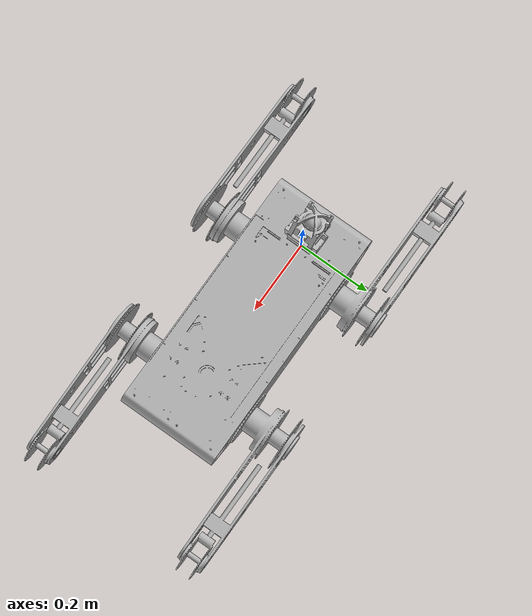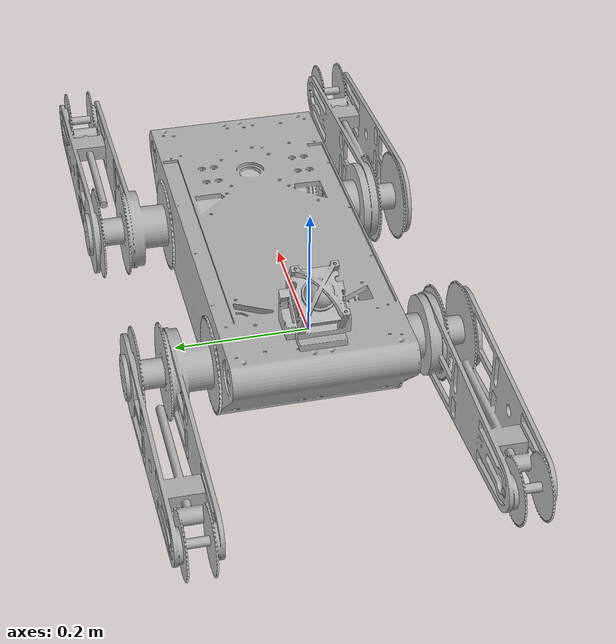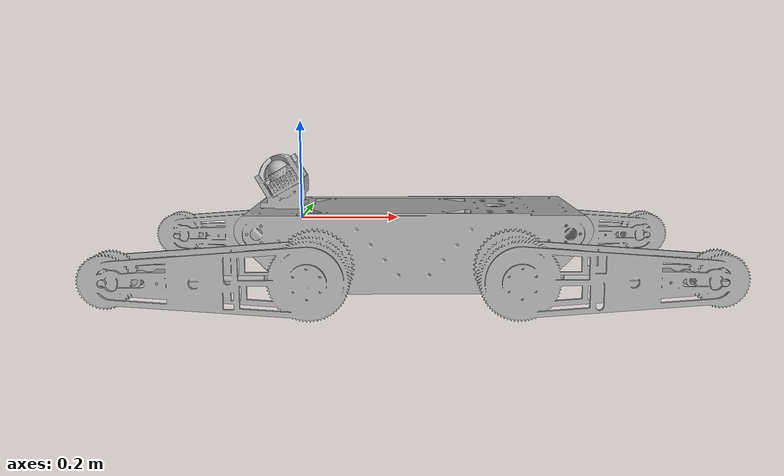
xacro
<?xml version="1.0" ?>
<robot name="ensamble_flaca" xmlns:xacro="http://www.ros.org/wiki/xacro">

<xacro:include filename="$(find ensamble_flaca_description)/urdf/materials.xacro" />
<xacro:include filename="$(find ensamble_flaca_description)/urdf/ensamble_flaca.trans" />
<xacro:include filename="$(find ensamble_flaca_description)/urdf/ensamble_flaca.gazebo" />
<link name="base_link">
  <inertial>
    <origin xyz="0.23698348447128786 0.00012178367054380957 -0.039756074730689435" rpy="0 0 0"/>
    <mass value="27.98886399690759"/>
    <inertia ixx="0.363399" iyy="1.350169" izz="1.508645" ixy="-0.001419" iyz="0.000232" ixz="-0.00833"/>
  </inertial>
  <visual>
    <origin xyz="0 0 0" rpy="0 0 0"/>
    <geometry>
      <mesh filename="package://ensamble_flaca_description/meshes/base_link.stl" scale="0.001 0.001 0.001"/>
    </geometry>
    <material name="silver"/>
  </visual>
  <collision>
    <origin xyz="0 0 0" rpy="0 0 0"/>
    <geometry>
      <mesh filename="package://ensamble_flaca_description/meshes/base_link.stl" scale="0.001 0.001 0.001"/>
    </geometry>
  </collision>
</link>

<link name="flippers1_1">
  <inertial>
    <origin xyz="0.08310622221294267 0.13783978661334642 1.4819839799784518e-11" rpy="0 0 0"/>
    <mass value="19.511406753581024"/>
    <inertia ixx="0.909151" iyy="0.343422" izz="1.222647" ixy="0.0" iyz="-5.2e-05" ixz="0.0"/>
  </inertial>
  <visual>
    <origin xyz="-0.42161 0.137845 0.075155" rpy="0 0 0"/>
    <geometry>
      <mesh filename="package://ensamble_flaca_description/meshes/flippers1_1.stl" scale="0.001 0.001 0.001"/>
    </geometry>
    <material name="silver"/>
  </visual>
  <collision>
    <origin xyz="-0.42161 0.137845 0.075155" rpy="0 0 0"/>
    <geometry>
      <mesh filename="package://ensamble_flaca_description/meshes/flippers1_1.stl" scale="0.001 0.001 0.001"/>
    </geometry>
  </collision>
</link>

<link name="flippers1_2">
  <inertial>
    <origin xyz="-0.08310622221294323 0.13783978661334642 -1.4817869153915808e-11" rpy="0 0 0"/>
    <mass value="19.511406753581024"/>
    <inertia ixx="0.909151" iyy="0.343422" izz="1.222647" ixy="-0.0" iyz="5.2e-05" ixz="0.0"/>
  </inertial>
  <visual>
    <origin xyz="-0.04161 0.137845 0.075155" rpy="0 0 0"/>
    <geometry>
      <mesh filename="package://ensamble_flaca_description/meshes/flippers1_2.stl" scale="0.001 0.001 0.001"/>
    </geometry>
    <material name="silver"/>
  </visual>
  <collision>
    <origin xyz="-0.04161 0.137845 0.075155" rpy="0 0 0"/>
    <geometry>
      <mesh filename="package://ensamble_flaca_description/meshes/flippers1_2.stl" scale="0.001 0.001 0.001"/>
    </geometry>
  </collision>
</link>

<link name="NEWAssay_v2_1">
  <inertial>
    <origin xyz="-0.027573810798244943 -0.019997657041634895 0.03881065903301395" rpy="0 0 0"/>
    <mass value="3.0305979524360294"/>
    <inertia ixx="0.003516" iyy="0.003608" izz="0.002954" ixy="-0.0" iyz="-0.0" ixz="3.2e-05"/>
  </inertial>
  <visual>
    <origin xyz="0.004332 -0.017515 -0.025185" rpy="0 0 0"/>
    <geometry>
      <mesh filename="package://ensamble_flaca_description/meshes/NEWAssay_v2_1.stl" scale="0.001 0.001 0.001"/>
    </geometry>
    <material name="silver"/>
  </visual>
  <collision>
    <origin xyz="0.004332 -0.017515 -0.025185" rpy="0 0 0"/>
    <geometry>
      <mesh filename="package://ensamble_flaca_description/meshes/NEWAssay_v2_1.stl" scale="0.001 0.001 0.001"/>
    </geometry>
  </collision>
</link>

<joint name="Base_link" type="fixed">
  <origin xyz="-0.004332 0.017515 0.025185" rpy="0 0 0"/>
  <parent link="base_link"/>
  <child link="NEWAssay_v2_1"/>
</joint>

<joint name="Flipper_delantero" type="fixed">
  <origin xyz="0.42161 -0.137845 -0.075155" rpy="0 0 0"/>
  <parent link="base_link"/>
  <child link="flippers1_1"/>
</joint>

<joint name="FLipper_Trasero" type="fixed">
  <origin xyz="0.04161 -0.137845 -0.075155" rpy="0 0 0"/>
  <parent link="base_link"/>
  <child link="flippers1_2"/>
</joint>

</robot>

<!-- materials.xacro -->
<robot name="ensamble_flaca" xmlns:xacro="http://www.ros.org/wiki/xacro" >

<material name="silver">
  <color rgba="0.700 0.700 0.700 1.000"/>
</material>

</robot>

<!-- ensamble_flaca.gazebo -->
<robot name="ensamble_flaca" xmlns:xacro="http://www.ros.org/wiki/xacro" >

<xacro:property name="body_color" value="Gazebo/Silver" />

<gazebo>
  <plugin name="control" filename="libgazebo_ros_control.so"/>
</gazebo>
<gazebo reference="base_link">
  <material>${body_color}</material>
  <mu1>0.2</mu1>
  <mu2>0.2</mu2>
  <self_collide>true</self_collide>
  <gravity>true</gravity>
</gazebo>

<gazebo reference="Cadera__1__1">
  <material>${body_color}</material>
  <mu1>0.2</mu1>
  <mu2>0.2</mu2>
  <self_collide>true</self_collide>
</gazebo>

<gazebo reference="cadera_a_hombro__1__1">
  <material>${body_color}</material>
  <mu1>0.2</mu1>
  <mu2>0.2</mu2>
  <self_collide>true</self_collide>
</gazebo>

<gazebo reference="flippers1_1">
  <material>${body_color}</material>
  <mu1>0.2</mu1>
  <mu2>0.2</mu2>
  <self_collide>true</self_collide>
</gazebo>

<gazebo reference="flippers1_2">
  <material>${body_color}</material>
  <mu1>0.2</mu1>
  <mu2>0.2</mu2>
  <self_collide>true</self_collide>
</gazebo>

<gazebo reference="Componente5__1__1">
  <material>${body_color}</material>
  <mu1>0.2</mu1>
  <mu2>0.2</mu2>
  <self_collide>true</self_collide>
</gazebo>

<gazebo reference="Componente3__1__1">
  <material>${body_color}</material>
  <mu1>0.2</mu1>
  <mu2>0.2</mu2>
  <self_collide>true</self_collide>
</gazebo>

<gazebo reference="wirstpt1_1">
  <material>${body_color}</material>
  <mu1>0.2</mu1>
  <mu2>0.2</mu2>
  <self_collide>true</self_collide>
</gazebo>

<gazebo reference="NEWAssay_v2_1">
  <material>${body_color}</material>
  <mu1>0.2</mu1>
  <mu2>0.2</mu2>
  <self_collide>true</self_collide>
</gazebo>

</robot>
